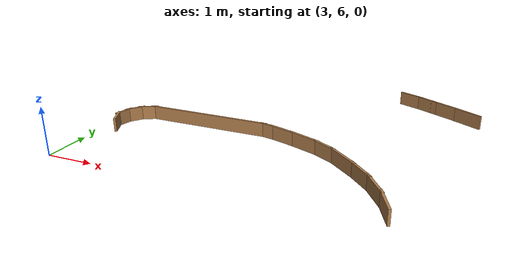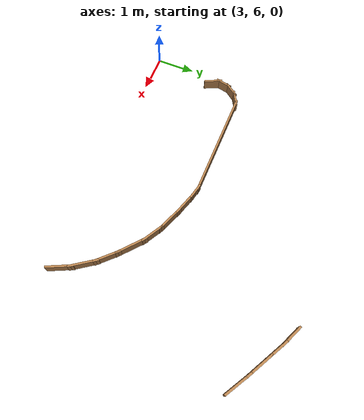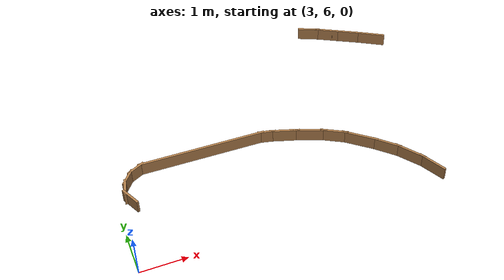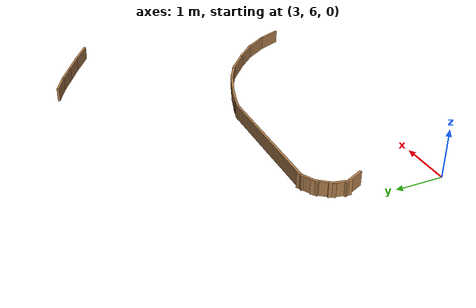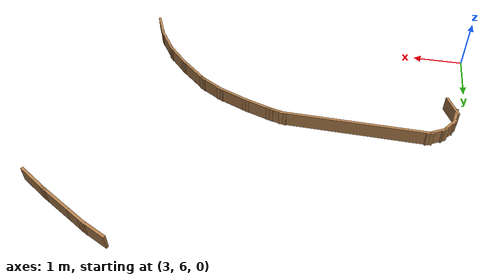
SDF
<sdf version="1.6">
 <model name="rover_racetrack">
  <pose>3.369 -0.8264 0 0 -0 0</pose>
  <link name="Wall_206">
   <collision name="Wall_206_Collision">
    <geometry><box><size>0.661176 0.05 0.3</size></box></geometry>
    <pose>0 0 0.15 0 -0 0</pose>
   </collision>
   <visual name="Wall_206_Visual">
    <pose>0 0 0.15 0 -0 0</pose>
    <geometry><box><size>0.661176 0.05 0.3</size></box></geometry>
    <material>
     <script><uri>file://media/materials/scripts/gazebo.material</uri><name>Gazebo/Wood</name></script>
     <ambient>0.435294 0.796078 0.67451 1</ambient>
    </material>
   </visual>
   <pose>6.18457 7.13056 0 0 -0 2.0169</pose>
  </link>
  <link name="Wall_207">
   <collision name="Wall_207_Collision">
    <geometry><box><size>0.739687 0.05 0.3</size></box></geometry>
    <pose>0 0 0.15 0 -0 0</pose>
   </collision>
   <visual name="Wall_207_Visual">
    <pose>0 0 0.15 0 -0 0</pose>
    <geometry><box><size>0.739687 0.05 0.3</size></box></geometry>
    <material>
     <script><uri>file://media/materials/scripts/gazebo.material</uri><name>Gazebo/Wood</name></script>
     <ambient>0.435294 0.796078 0.67451 1</ambient>
    </material>
   </visual>
   <pose>5.90388 7.60174 0 0 -0 2.18709</pose>
  </link>
  <link name="Wall_208">
   <collision name="Wall_208_Collision">
    <geometry><box><size>0.688744 0.05 0.3</size></box></geometry>
    <pose>0 0 0.15 0 -0 0</pose>
   </collision>
   <visual name="Wall_208_Visual">
    <pose>0 0 0.15 0 -0 0</pose>
    <geometry><box><size>0.688744 0.05 0.3</size></box></geometry>
    <material>
     <script><uri>file://media/materials/scripts/gazebo.material</uri><name>Gazebo/Wood</name></script>
     <ambient>0.435294 0.796078 0.67451 1</ambient>
    </material>
   </visual>
   <pose>5.54298 8.03281 0 0 -0 2.35619</pose>
  </link>
  <link name="Wall_209">
   <collision name="Wall_209_Collision">
    <geometry><box><size>0.832878 0.05 0.3</size></box></geometry>
    <pose>0 0 0.15 0 -0 0</pose>
   </collision>
   <visual name="Wall_209_Visual">
    <pose>0 0 0.15 0 -0 0</pose>
    <geometry><box><size>0.832878 0.05 0.3</size></box></geometry>
    <material>
     <script><uri>file://media/materials/scripts/gazebo.material</uri><name>Gazebo/Wood</name></script>
     <ambient>0.435294 0.796078 0.67451 1</ambient>
    </material>
   </visual>
   <pose>5.09185 8.44383 0 0 -0 2.43934</pose>
  </link>
  <link name="Wall_210">
   <collision name="Wall_210_Collision">
    <geometry><box><size>0.634944 0.05 0.3</size></box></geometry>
    <pose>0 0 0.15 0 -0 0</pose>
   </collision>
   <visual name="Wall_210_Visual">
    <pose>0 0 0.15 0 -0 0</pose>
    <geometry><box><size>0.634944 0.05 0.3</size></box></geometry>
    <material>
     <script><uri>file://media/materials/scripts/gazebo.material</uri><name>Gazebo/Wood</name></script>
     <ambient>0.435294 0.796078 0.67451 1</ambient>
    </material>
   </visual>
   <pose>4.62068 8.78468 0 0 -0 2.62245</pose>
  </link>
  <link name="Wall_211">
   <collision name="Wall_211_Collision">
    <geometry><box><size>0.753168 0.05 0.3</size></box></geometry>
    <pose>0 0 0.15 0 -0 0</pose>
   </collision>
   <visual name="Wall_211_Visual">
    <pose>0 0 0.15 0 -0 0</pose>
    <geometry><box><size>0.753168 0.05 0.3</size></box></geometry>
    <material>
     <script><uri>file://media/materials/scripts/gazebo.material</uri><name>Gazebo/Wood</name></script>
     <ambient>0.435294 0.796078 0.67451 1</ambient>
    </material>
   </visual>
   <pose>4.12945 9.01526 0 0 -0 2.76726</pose>
  </link>
  <link name="Wall_212">
   <collision name="Wall_212_Collision">
    <geometry><box><size>0.676288 0.05 0.3</size></box></geometry>
    <pose>0 0 0.15 0 -0 0</pose>
   </collision>
   <visual name="Wall_212_Visual">
    <pose>0 0 0.15 0 -0 0</pose>
    <geometry><box><size>0.676288 0.05 0.3</size></box></geometry>
    <material>
     <script><uri>file://media/materials/scripts/gazebo.material</uri><name>Gazebo/Wood</name></script>
     <ambient>0.435294 0.796078 0.67451 1</ambient>
    </material>
   </visual>
   <pose>3.59813 9.20573 0 0 -0 2.83189</pose>
  </link>
  <link name="Wall_213">
   <collision name="Wall_213_Collision">
    <geometry><box><size>0.4175 0.05 0.3</size></box></geometry>
    <pose>0 0 0.15 0 -0 0</pose>
   </collision>
   <visual name="Wall_213_Visual">
    <pose>0 0 0.15 0 -0 0</pose>
    <geometry><box><size>0.4175 0.05 0.3</size></box></geometry>
    <material>
     <script><uri>file://media/materials/scripts/gazebo.material</uri><name>Gazebo/Wood</name></script>
     <ambient>0.435294 0.796078 0.67451 1</ambient>
    </material>
   </visual>
   <pose>3.21718 9.31601 0 0 -0 2.91479</pose>
  </link>
  <link name="Wall_214">
   <collision name="Wall_214_Collision">
    <geometry><box><size>2.87687 0.05 0.3</size></box></geometry>
    <pose>0 0 0.15 0 -0 0</pose>
   </collision>
   <visual name="Wall_214_Visual">
    <pose>0 0 0.15 0 -0 0</pose>
    <geometry><box><size>2.87687 0.05 0.3</size></box></geometry>
    <material>
     <script><uri>file://media/materials/scripts/gazebo.material</uri><name>Gazebo/Wood</name></script>
     <ambient>0.435294 0.796078 0.67451 1</ambient>
    </material>
   </visual>
   <pose>1.72345 9.35611 0 0 -0 3.13424</pose>
  </link>
  <link name="Wall_215">
   <collision name="Wall_215_Collision">
    <geometry><box><size>0.446034 0.05 0.3</size></box></geometry>
    <pose>0 0 0.15 0 -0 0</pose>
   </collision>
   <visual name="Wall_215_Visual">
    <pose>0 0 0.15 0 -0 0</pose>
    <geometry><box><size>0.446034 0.05 0.3</size></box></geometry>
    <material>
     <script><uri>file://media/materials/scripts/gazebo.material</uri><name>Gazebo/Wood</name></script>
     <ambient>0.435294 0.796078 0.67451 1</ambient>
    </material>
   </visual>
   <pose>0.229733 9.29596 0 0 0 -2.64765</pose>
  </link>
  <link name="Wall_216">
   <collision name="Wall_216_Collision">
    <geometry><box><size>0.45075 0.05 0.3</size></box></geometry>
    <pose>0 0 0.15 0 -0 0</pose>
   </collision>
   <visual name="Wall_216_Visual">
    <pose>0 0 0.15 0 -0 0</pose>
    <geometry><box><size>0.45075 0.05 0.3</size></box></geometry>
    <material>
     <script><uri>file://media/materials/scripts/gazebo.material</uri><name>Gazebo/Wood</name></script>
     <ambient>0.435294 0.796078 0.67451 1</ambient>
    </material>
   </visual>
   <pose>0.009183 9.10548 0 0 0 -2.2143</pose>
  </link>
  <link name="Wall_217">
   <collision name="Wall_217_Collision">
    <geometry><box><size>0.437072 0.05 0.3</size></box></geometry>
    <pose>0 0 0.15 0 -0 0</pose>
   </collision>
   <visual name="Wall_217_Visual">
    <pose>0 0 0.15 0 -0 0</pose>
    <geometry><box><size>0.437072 0.05 0.3</size></box></geometry>
    <material>
     <script><uri>file://media/materials/scripts/gazebo.material</uri><name>Gazebo/Wood</name></script>
     <ambient>0.435294 0.796078 0.67451 1</ambient>
    </material>
   </visual>
   <pose>-0.111117 8.84483 0 0 0 -1.78189</pose>
  </link>
  <link name="Wall_218">
   <collision name="Wall_218_Collision">
    <geometry><box><size>0.481886 0.05 0.3</size></box></geometry>
    <pose>0 0 0.15 0 -0 0</pose>
   </collision>
   <visual name="Wall_218_Visual">
    <pose>0 0 0.15 0 -0 0</pose>
    <geometry><box><size>0.481886 0.05 0.3</size></box></geometry>
    <material>
     <script><uri>file://media/materials/scripts/gazebo.material</uri><name>Gazebo/Wood</name></script>
     <ambient>0.435294 0.796078 0.67451 1</ambient>
    </material>
   </visual>
   <pose>-0.071017 8.55411 0 0 0 -1.13417</pose>
  </link>
  <link name="Wall_397">
   <collision name="Wall_397_Collision">
    <geometry><box><size>0.738335 0.05 0.3</size></box></geometry>
    <pose>0 0 0.15 0 -0 0</pose>
   </collision>
   <visual name="Wall_397_Visual">
    <pose>0 0 0.15 0 -0 0</pose>
    <geometry><box><size>0.738335 0.05 0.3</size></box></geometry>
    <material>
     <script><uri>file://media/materials/scripts/gazebo.material</uri><name>Gazebo/Wood</name></script>
     <ambient>0.435294 0.796078 0.67451 1</ambient>
    </material>
   </visual>
   <pose>6.95903 11.7419 0 0 -0 2.59673</pose>
  </link>
  <link name="Wall_398">
   <collision name="Wall_398_Collision">
    <geometry><box><size>0.743841 0.05 0.3</size></box></geometry>
    <pose>0 0 0.15 0 -0 0</pose>
   </collision>
   <visual name="Wall_398_Visual">
    <pose>0 0 0.15 0 -0 0</pose>
    <geometry><box><size>0.743841 0.05 0.3</size></box></geometry>
    <material>
     <script><uri>file://media/materials/scripts/gazebo.material</uri><name>Gazebo/Wood</name></script>
     <ambient>0.435294 0.796078 0.67451 1</ambient>
    </material>
   </visual>
   <pose>6.44826 12.0393 0 0 -0 2.632</pose>
  </link>
  <link name="Wall_399">
   <collision name="Wall_399_Collision">
    <geometry><box><size>0.586867 0.05 0.3</size></box></geometry>
    <pose>0 0 0.15 0 -0 0</pose>
   </collision>
   <visual name="Wall_399_Visual">
    <pose>0 0 0.15 0 -0 0</pose>
    <geometry><box><size>0.586867 0.05 0.3</size></box></geometry>
    <material>
     <script><uri>file://media/materials/scripts/gazebo.material</uri><name>Gazebo/Wood</name></script>
     <ambient>0.435294 0.796078 0.67451 1</ambient>
    </material>
   </visual>
   <pose>5.99848 12.2908 0 0 -0 2.6311</pose>
  </link>
  <link name="Wall_400">
   <collision name="Wall_400_Collision">
    <geometry><box><size>0.586601 0.05 0.3</size></box></geometry>
    <pose>0 0 0.15 0 -0 0</pose>
   </collision>
   <visual name="Wall_400_Visual">
    <pose>0 0 0.15 0 -0 0</pose>
    <geometry><box><size>0.586601 0.05 0.3</size></box></geometry>
    <material>
     <script><uri>file://media/materials/scripts/gazebo.material</uri><name>Gazebo/Wood</name></script>
     <ambient>0.435294 0.796078 0.67451 1</ambient>
    </material>
   </visual>
   <pose>5.60969 12.489 0 0 -0 2.70919</pose>
  </link>
  <static>1</static>
 </model>
</sdf>
